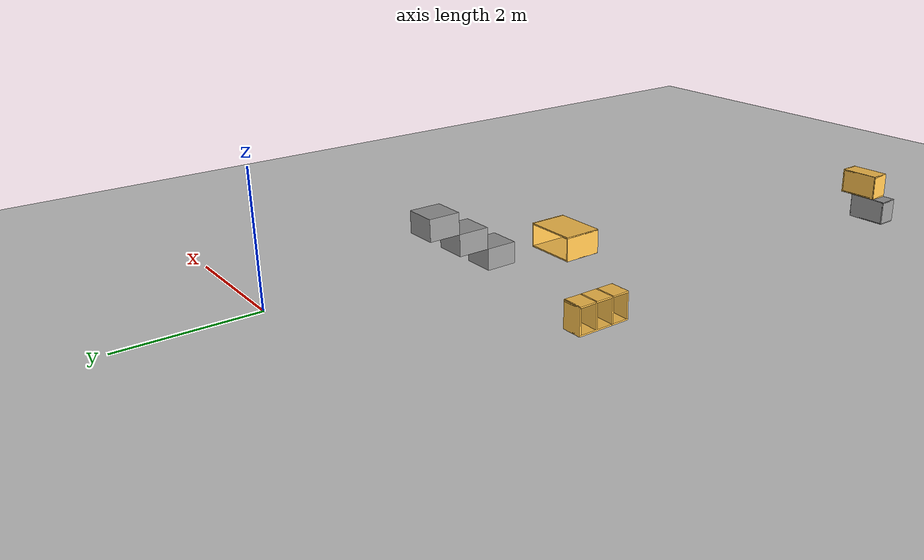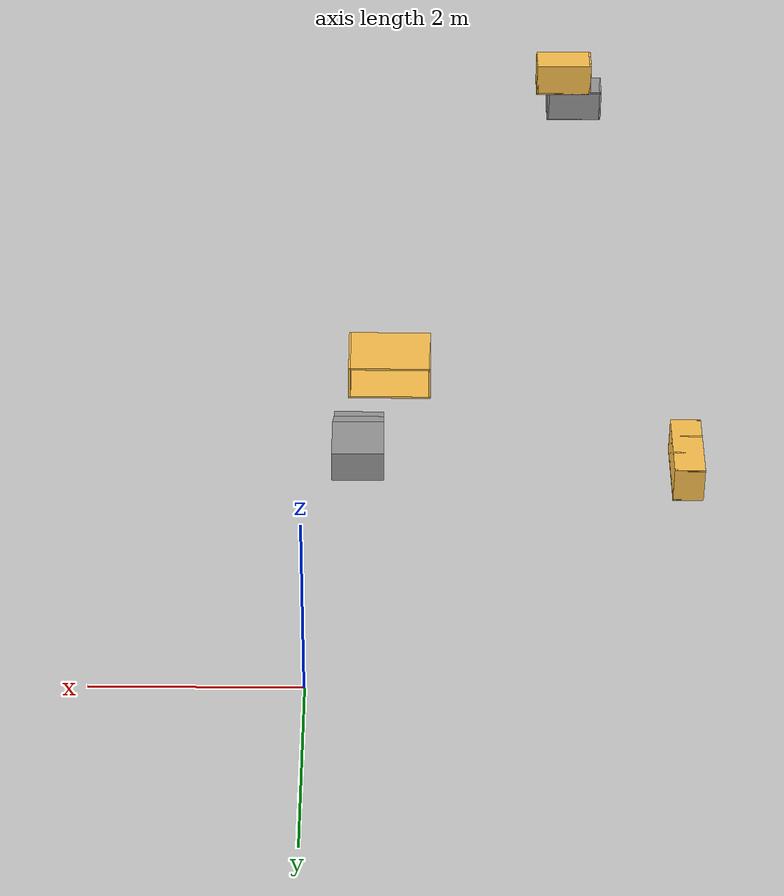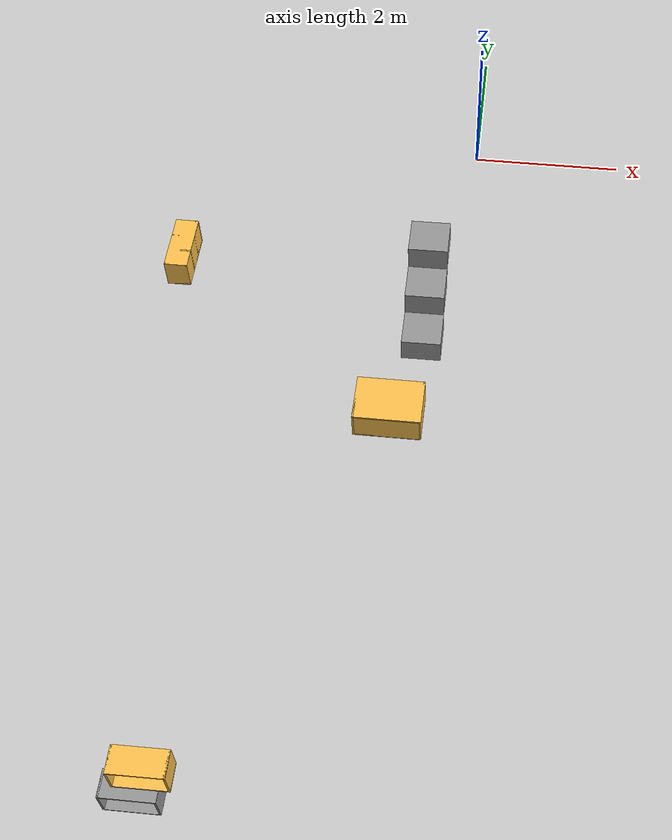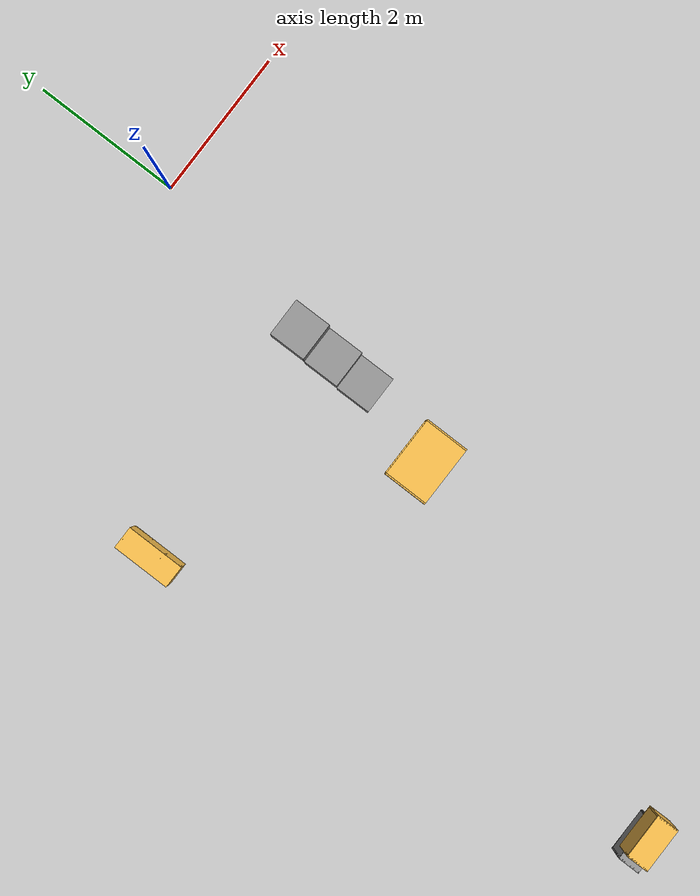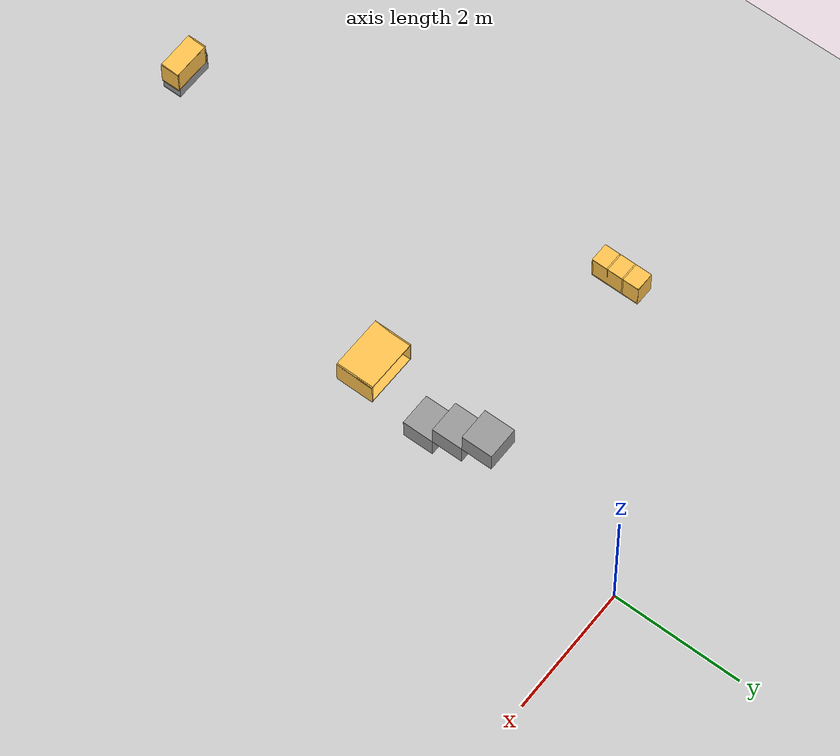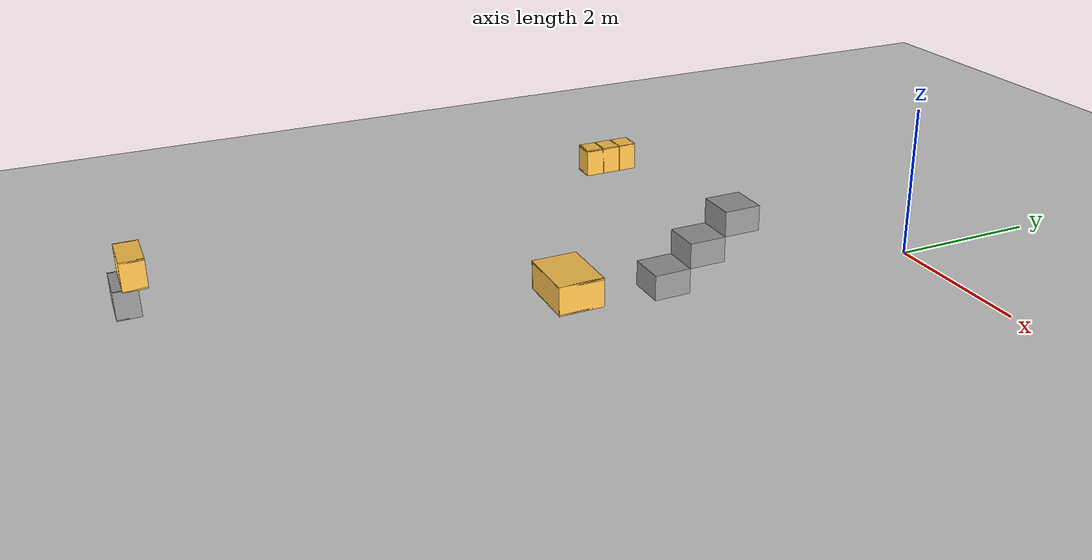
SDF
<sdf version="1.6">
 <world name="default">
  <model name="ground_plane">
   <static>1</static>
   <link name="link">
    <collision name="collision">
     <geometry><plane><normal>0 0 1</normal><size>100 100</size></plane></geometry>
     <surface><friction><ode><mu>100</mu><mu2>50</mu2></ode></friction></surface>
    </collision>
    <visual name="visual">
     <cast_shadows>0</cast_shadows>
     <geometry><plane><normal>0 0 1</normal><size>100 100</size></plane></geometry>
     <material>
      <script><uri>file://media/materials/scripts/gazebo.material</uri><name>Gazebo/Grey</name></script>
     </material>
    </visual>
   </link>
  </model>
  <model name="Wall_Cabinet_24x15W">
   <link name="Wall_41">
    <pose>0 0 0.01 0 -0 0</pose>
    <inertial>
     <mass>1.4983</mass>
     <inertia><ixx>0.011</ixx><iyy>0.0571</iyy><izz>0.0462</izz><ixy>0</ixy><ixz>0</ixz><iyz>0</iyz></inertia>
    </inertial>
    <collision name="Wall_41_Collision"><geometry><box><size>0.608 0.296 0.02</size></box></geometry></collision>
    <visual name="Wall_41_Visual">
     <geometry><box><size>0.608 0.296 0.02</size></box></geometry>
     <material>
      <script><uri>file://media/materials/scripts/gazebo.material</uri><name>Gazebo/Grey</name></script>
      <ambient>1 1 1 1</ambient>
     </material>
    </visual>
    <pose>0.000184 0.181953 0 0 -0 0</pose>
   </link>
   <joint name="41_43" type="fixed">
    <pose>-0.304 0 0 0 -0 0</pose>
    <parent>Wall_43</parent>
    <child>Wall_41</child>
    <axis>
     <xyz>0 0 1</xyz>
     <use_parent_model_frame>0</use_parent_model_frame>
     <limit><lower>-1e+16</lower><upper>1e+16</upper></limit>
    </axis>
   </joint>
   <joint name="41_45" type="fixed">
    <pose>0.304 0 0 0 -0 0</pose>
    <parent>Wall_45</parent>
    <child>Wall_41</child>
    <axis>
     <xyz>0 0 1</xyz>
     <use_parent_model_frame>0</use_parent_model_frame>
     <limit><lower>-1e+16</lower><upper>1e+16</upper></limit>
    </axis>
   </joint>
   <joint name="41_49" type="fixed">
    <pose>0 -0.148 0 0 -0 0</pose>
    <parent>Wall_49</parent>
    <child>Wall_41</child>
    <axis>
     <xyz>0 0 1</xyz>
     <use_parent_model_frame>0</use_parent_model_frame>
     <limit><lower>-1e+16</lower><upper>1e+16</upper></limit>
    </axis>
   </joint>
   <link name="Wall_43">
    <pose>-0.294 0 0.192 0 -0 0</pose>
    <inertial>
     <mass>0.9463</mass>
     <inertia><ixx>0.0069</ixx><iyy>0.0185</iyy><izz>0.0117</izz><ixy>0</ixy><ixz>0</ixz><iyz>0</iyz></inertia>
    </inertial>
    <collision name="Wall_43_Collision"><geometry><box><size>0.02 0.296 0.384</size></box></geometry></collision>
    <visual name="Wall_43_Visual">
     <geometry><box><size>0.02 0.296 0.384</size></box></geometry>
     <material>
      <script><uri>file://media/materials/scripts/gazebo.material</uri><name>Gazebo/Grey</name></script>
      <ambient>1 1 1 1</ambient>
     </material>
    </visual>
   </link>
   <link name="Wall_45">
    <pose>0.294 0 0.192 0 -0 0</pose>
    <inertial>
     <mass>0.9463</mass>
     <inertia><ixx>0.0069</ixx><iyy>0.0185</iyy><izz>0.0117</izz><ixy>0</ixy><ixz>0</ixz><iyz>0</iyz></inertia>
    </inertial>
    <collision name="Wall_45_Collision"><geometry><box><size>0.02 0.296 0.384</size></box></geometry></collision>
    <visual name="Wall_45_Visual">
     <geometry><box><size>0.02 0.296 0.384</size></box></geometry>
     <material>
      <script><uri>file://media/materials/scripts/gazebo.material</uri><name>Gazebo/Grey</name></script>
      <ambient>1 1 1 1</ambient>
     </material>
    </visual>
   </link>
   <link name="Wall_47">
    <pose>0 0 0.374 0 -0 0</pose>
    <inertial>
     <mass>1.4983</mass>
     <inertia><ixx>0.011</ixx><iyy>0.0571</iyy><izz>0.0462</izz><ixy>0</ixy><ixz>0</ixz><iyz>0</iyz></inertia>
    </inertial>
    <collision name="Wall_47_Collision"><geometry><box><size>0.608 0.296 0.02</size></box></geometry></collision>
    <visual name="Wall_47_Visual">
     <geometry><box><size>0.608 0.296 0.02</size></box></geometry>
     <material>
      <script><uri>file://media/materials/scripts/gazebo.material</uri><name>Gazebo/Grey</name></script>
      <ambient>1 1 1 1</ambient>
     </material>
    </visual>
   </link>
   <joint name="47_43" type="fixed">
    <pose>-0.304 0 0 0 -0 0</pose>
    <parent>Wall_43</parent>
    <child>Wall_47</child>
    <axis>
     <xyz>0 0 1</xyz>
     <use_parent_model_frame>0</use_parent_model_frame>
     <limit><lower>-1e+16</lower><upper>1e+16</upper></limit>
    </axis>
   </joint>
   <joint name="47_45" type="fixed">
    <pose>0.304 0 0 0 -0 0</pose>
    <parent>Wall_45</parent>
    <child>Wall_47</child>
    <axis>
     <xyz>0 0 1</xyz>
     <use_parent_model_frame>0</use_parent_model_frame>
     <limit><lower>-1e+16</lower><upper>1e+16</upper></limit>
    </axis>
   </joint>
   <joint name="47_49" type="fixed">
    <pose>0 -0.148 0 0 -0 0</pose>
    <parent>Wall_49</parent>
    <child>Wall_47</child>
    <axis>
     <xyz>0 0 1</xyz>
     <use_parent_model_frame>0</use_parent_model_frame>
     <limit><lower>-1e+16</lower><upper>1e+16</upper></limit>
    </axis>
   </joint>
   <link name="Wall_49">
    <pose>0 -0.138 0.19 0 -0 0</pose>
    <inertial>
     <mass>1.9108</mass>
     <inertia><ixx>0.0231</ixx><iyy>0.0582</iyy><izz>0.0811</izz><ixy>0</ixy><ixz>0</ixz><iyz>0</iyz></inertia>
    </inertial>
    <collision name="Wall_49_Collision"><geometry><box><size>0.604 0.02 0.38</size></box></geometry></collision>
    <visual name="Wall_49_Visual">
     <geometry><box><size>0.604 0.02 0.38</size></box></geometry>
     <material>
      <script><uri>file://media/materials/scripts/gazebo.material</uri><name>Gazebo/Grey</name></script>
      <ambient>1 1 1 1</ambient>
     </material>
    </visual>
   </link>
   <joint name="49_43" type="fixed">
    <pose>-0.302 0 0 0 -0 0</pose>
    <parent>Wall_41</parent>
    <child>Wall_49</child>
    <axis>
     <xyz>0 1 0</xyz>
     <use_parent_model_frame>0</use_parent_model_frame>
     <limit><lower>-1e+16</lower><upper>1e+16</upper></limit>
    </axis>
   </joint>
   <joint name="49_45" type="fixed">
    <pose>0.302 0 0 0 -0 0</pose>
    <parent>Wall_45</parent>
    <child>Wall_49</child>
    <axis>
     <xyz>0 1 0</xyz>
     <use_parent_model_frame>0</use_parent_model_frame>
     <limit><lower>-1e+16</lower><upper>1e+16</upper></limit>
    </axis>
   </joint>
   <static>1</static>
   <pose>-2.81871 -9.49077 -0.015499 0 0 -3.13778</pose>
  </model>
  <model name="Wall_Cabinet_24x15M">
   <link name="Wall_41">
    <pose>0 0 0.01 0 -0 0</pose>
    <inertial>
     <mass>1.4983</mass>
     <inertia><ixx>0.011</ixx><iyy>0.0571</iyy><izz>0.0462</izz><ixy>0</ixy><ixz>0</ixz><iyz>0</iyz></inertia>
    </inertial>
    <collision name="Wall_41_Collision"><geometry><box><size>0.608 0.296 0.02</size></box></geometry></collision>
    <visual name="Wall_41_Visual">
     <geometry><box><size>0.608 0.296 0.02</size></box></geometry>
     <material>
      <script><uri>file://media/materials/scripts/gazebo.material</uri><name>Gazebo/Grey</name></script>
      <ambient>1 0.764706 0.305882 1</ambient>
     </material>
    </visual>
    <pose>0.000184 0.181953 0 0 -0 0</pose>
   </link>
   <joint name="41_43" type="fixed">
    <pose>-0.304 0 0 0 -0 0</pose>
    <parent>Wall_43</parent>
    <child>Wall_41</child>
    <axis>
     <xyz>0 0 1</xyz>
     <use_parent_model_frame>0</use_parent_model_frame>
     <limit><lower>-1e+16</lower><upper>1e+16</upper></limit>
    </axis>
   </joint>
   <joint name="41_45" type="fixed">
    <pose>0.304 0 0 0 -0 0</pose>
    <parent>Wall_45</parent>
    <child>Wall_41</child>
    <axis>
     <xyz>0 0 1</xyz>
     <use_parent_model_frame>0</use_parent_model_frame>
     <limit><lower>-1e+16</lower><upper>1e+16</upper></limit>
    </axis>
   </joint>
   <joint name="41_49" type="fixed">
    <pose>0 -0.148 0 0 -0 0</pose>
    <parent>Wall_49</parent>
    <child>Wall_41</child>
    <axis>
     <xyz>0 0 1</xyz>
     <use_parent_model_frame>0</use_parent_model_frame>
     <limit><lower>-1e+16</lower><upper>1e+16</upper></limit>
    </axis>
   </joint>
   <link name="Wall_43">
    <pose>-0.294 0 0.192 0 -0 0</pose>
    <inertial>
     <mass>0.9463</mass>
     <inertia><ixx>0.0069</ixx><iyy>0.0185</iyy><izz>0.0117</izz><ixy>0</ixy><ixz>0</ixz><iyz>0</iyz></inertia>
    </inertial>
    <collision name="Wall_43_Collision"><geometry><box><size>0.02 0.296 0.384</size></box></geometry></collision>
    <visual name="Wall_43_Visual">
     <geometry><box><size>0.02 0.296 0.384</size></box></geometry>
     <material>
      <script><uri>file://media/materials/scripts/gazebo.material</uri><name>Gazebo/Grey</name></script>
      <ambient>1 0.764706 0.305882 1</ambient>
     </material>
    </visual>
   </link>
   <link name="Wall_45">
    <pose>0.294 0 0.192 0 -0 0</pose>
    <inertial>
     <mass>0.9463</mass>
     <inertia><ixx>0.0069</ixx><iyy>0.0185</iyy><izz>0.0117</izz><ixy>0</ixy><ixz>0</ixz><iyz>0</iyz></inertia>
    </inertial>
    <collision name="Wall_45_Collision"><geometry><box><size>0.02 0.296 0.384</size></box></geometry></collision>
    <visual name="Wall_45_Visual">
     <geometry><box><size>0.02 0.296 0.384</size></box></geometry>
     <material>
      <script><uri>file://media/materials/scripts/gazebo.material</uri><name>Gazebo/Grey</name></script>
      <ambient>1 0.764706 0.305882 1</ambient>
     </material>
    </visual>
   </link>
   <link name="Wall_47">
    <pose>0 0 0.374 0 -0 0</pose>
    <inertial>
     <mass>1.4983</mass>
     <inertia><ixx>0.011</ixx><iyy>0.0571</iyy><izz>0.0462</izz><ixy>0</ixy><ixz>0</ixz><iyz>0</iyz></inertia>
    </inertial>
    <collision name="Wall_47_Collision"><geometry><box><size>0.608 0.296 0.02</size></box></geometry></collision>
    <visual name="Wall_47_Visual">
     <geometry><box><size>0.608 0.296 0.02</size></box></geometry>
     <material>
      <script><uri>file://media/materials/scripts/gazebo.material</uri><name>Gazebo/Grey</name></script>
      <ambient>1 0.764706 0.305882 1</ambient>
     </material>
    </visual>
   </link>
   <joint name="47_43" type="fixed">
    <pose>-0.304 0 0 0 -0 0</pose>
    <parent>Wall_43</parent>
    <child>Wall_47</child>
    <axis>
     <xyz>0 0 1</xyz>
     <use_parent_model_frame>0</use_parent_model_frame>
     <limit><lower>-1e+16</lower><upper>1e+16</upper></limit>
    </axis>
   </joint>
   <joint name="47_45" type="fixed">
    <pose>0.304 0 0 0 -0 0</pose>
    <parent>Wall_45</parent>
    <child>Wall_47</child>
    <axis>
     <xyz>0 0 1</xyz>
     <use_parent_model_frame>0</use_parent_model_frame>
     <limit><lower>-1e+16</lower><upper>1e+16</upper></limit>
    </axis>
   </joint>
   <joint name="47_49" type="fixed">
    <pose>0 -0.148 0 0 -0 0</pose>
    <parent>Wall_49</parent>
    <child>Wall_47</child>
    <axis>
     <xyz>0 0 1</xyz>
     <use_parent_model_frame>0</use_parent_model_frame>
     <limit><lower>-1e+16</lower><upper>1e+16</upper></limit>
    </axis>
   </joint>
   <link name="Wall_49">
    <pose>0 -0.138 0.19 0 -0 0</pose>
    <inertial>
     <mass>1.9108</mass>
     <inertia><ixx>0.0231</ixx><iyy>0.0582</iyy><izz>0.0811</izz><ixy>0</ixy><ixz>0</ixz><iyz>0</iyz></inertia>
    </inertial>
    <collision name="Wall_49_Collision"><geometry><box><size>0.604 0.02 0.38</size></box></geometry></collision>
    <visual name="Wall_49_Visual">
     <geometry><box><size>0.604 0.02 0.38</size></box></geometry>
     <material>
      <script><uri>file://media/materials/scripts/gazebo.material</uri><name>Gazebo/Grey</name></script>
      <ambient>1 0.764706 0.305882 1</ambient>
     </material>
    </visual>
   </link>
   <joint name="49_43" type="fixed">
    <pose>-0.302 0 0 0 -0 0</pose>
    <parent>Wall_41</parent>
    <child>Wall_49</child>
    <axis>
     <xyz>0 1 0</xyz>
     <use_parent_model_frame>0</use_parent_model_frame>
     <limit><lower>-1e+16</lower><upper>1e+16</upper></limit>
    </axis>
   </joint>
   <joint name="49_45" type="fixed">
    <pose>0.302 0 0 0 -0 0</pose>
    <parent>Wall_45</parent>
    <child>Wall_49</child>
    <axis>
     <xyz>0 1 0</xyz>
     <use_parent_model_frame>0</use_parent_model_frame>
     <limit><lower>-1e+16</lower><upper>1e+16</upper></limit>
    </axis>
   </joint>
   <static>1</static>
   <pose>-2.68553 -9.38223 0.407254 0.002206 -0 -3.13266</pose>
  </model>
  <model name="Fridge_Cabinet_33x15">
   <link name="Wall_17">
    <pose>0 0 0.01 0 -0 0</pose>
    <inertial>
     <mass>4.8627</mass>
     <inertia><ixx>0.146</ixx><iyy>0.4318</iyy><izz>0.2861</izz><ixy>0</ixy><ixz>0</ixz><iyz>0</iyz></inertia>
    </inertial>
    <collision name="Wall_17_Collision"><geometry><box><size>0.84 0.6 0.02</size></box></geometry></collision>
    <visual name="Wall_17_Visual">
     <geometry><box><size>0.84 0.6 0.02</size></box></geometry>
     <material>
      <script><uri>file://media/materials/scripts/gazebo.material</uri><name>Gazebo/Grey</name></script>
      <ambient>1 0.764706 0.305882 1</ambient>
     </material>
    </visual>
   </link>
   <joint name="17_21" type="fixed">
    <pose>0.42 0 0 0 -0 0</pose>
    <parent>Wall_21</parent>
    <child>Wall_17</child>
    <axis>
     <xyz>1 0 0</xyz>
     <use_parent_model_frame>0</use_parent_model_frame>
     <limit><lower>-1e+16</lower><upper>1e+16</upper></limit>
    </axis>
   </joint>
   <joint name="17_19" type="fixed">
    <pose>-0.42 0 0 0 -0 0</pose>
    <parent>Wall_19</parent>
    <child>Wall_17</child>
    <axis>
     <xyz>1 0 0</xyz>
     <use_parent_model_frame>0</use_parent_model_frame>
     <limit><lower>-1e+16</lower><upper>1e+16</upper></limit>
    </axis>
   </joint>
   <joint name="17_25" type="fixed">
    <pose>0 -0.3 0 0 -0 0</pose>
    <parent>Wall_25</parent>
    <child>Wall_17</child>
    <axis>
     <xyz>0 1 0</xyz>
     <use_parent_model_frame>0</use_parent_model_frame>
     <limit><lower>-1e+16</lower><upper>1e+16</upper></limit>
    </axis>
   </joint>
   <link name="Wall_19">
    <pose>-0.41 0 0.192 0 -0 0</pose>
    <inertial>
     <mass>2.223</mass>
     <inertia><ixx>0.0668</ixx><iyy>0.094</iyy><izz>0.0274</izz><ixy>0</ixy><ixz>0</ixz><iyz>0</iyz></inertia>
    </inertial>
    <collision name="Wall_19_Collision"><geometry><box><size>0.02 0.6 0.384</size></box></geometry></collision>
    <visual name="Wall_19_Visual">
     <geometry><box><size>0.02 0.6 0.384</size></box></geometry>
     <material>
      <script><uri>file://media/materials/scripts/gazebo.material</uri><name>Gazebo/Grey</name></script>
      <ambient>1 0.764706 0.305882 1</ambient>
     </material>
    </visual>
   </link>
   <link name="Wall_21">
    <pose>0.41 0 0.192 0 -0 0</pose>
    <inertial>
     <mass>2.223</mass>
     <inertia><ixx>0.0668</ixx><iyy>0.094</iyy><izz>0.0274</izz><ixy>0</ixy><ixz>0</ixz><iyz>0</iyz></inertia>
    </inertial>
    <collision name="Wall_21_Collision"><geometry><box><size>0.02 0.6 0.384</size></box></geometry></collision>
    <visual name="Wall_21_Visual">
     <geometry><box><size>0.02 0.6 0.384</size></box></geometry>
     <material>
      <script><uri>file://media/materials/scripts/gazebo.material</uri><name>Gazebo/Grey</name></script>
      <ambient>1 0.764706 0.305882 1</ambient>
     </material>
    </visual>
   </link>
   <link name="Wall_23">
    <pose>0 0 0.374 0 -0 0</pose>
    <inertial>
     <mass>4.8627</mass>
     <inertia><ixx>0.146</ixx><iyy>0.4318</iyy><izz>0.2861</izz><ixy>0</ixy><ixz>0</ixz><iyz>0</iyz></inertia>
    </inertial>
    <collision name="Wall_23_Collision"><geometry><box><size>0.84 0.6 0.02</size></box></geometry></collision>
    <visual name="Wall_23_Visual">
     <geometry><box><size>0.84 0.6 0.02</size></box></geometry>
     <material>
      <script><uri>file://media/materials/scripts/gazebo.material</uri><name>Gazebo/Grey</name></script>
      <ambient>1 0.764706 0.305882 1</ambient>
     </material>
    </visual>
   </link>
   <joint name="23_21" type="fixed">
    <pose>0.42 0 0 0 -0 0</pose>
    <parent>Wall_21</parent>
    <child>Wall_23</child>
    <axis>
     <xyz>0 0 1</xyz>
     <use_parent_model_frame>0</use_parent_model_frame>
     <limit><lower>-1e+16</lower><upper>1e+16</upper></limit>
    </axis>
   </joint>
   <joint name="23_19" type="fixed">
    <pose>-0.42 0 0 0 -0 0</pose>
    <parent>Wall_19</parent>
    <child>Wall_23</child>
    <axis>
     <xyz>0 0 1</xyz>
     <use_parent_model_frame>0</use_parent_model_frame>
     <limit><lower>-1e+16</lower><upper>1e+16</upper></limit>
    </axis>
   </joint>
   <joint name="23_25" type="fixed">
    <pose>0 -0.3 0 0 -0 0</pose>
    <parent>Wall_25</parent>
    <child>Wall_23</child>
    <axis>
     <xyz>0 0 1</xyz>
     <use_parent_model_frame>0</use_parent_model_frame>
     <limit><lower>-1e+16</lower><upper>1e+16</upper></limit>
    </axis>
   </joint>
   <link name="Wall_25">
    <pose>0 -0.29 0.19 0 -0 0</pose>
    <inertial>
     <mass>3.0651</mass>
     <inertia><ixx>0.037</ixx><iyy>0.1786</iyy><izz>0.2154</izz><ixy>0</ixy><ixz>0</ixz><iyz>0</iyz></inertia>
    </inertial>
    <collision name="Wall_25_Collision"><geometry><box><size>0.836 0.02 0.38</size></box></geometry></collision>
    <visual name="Wall_25_Visual">
     <geometry><box><size>0.836 0.02 0.38</size></box></geometry>
     <material>
      <script><uri>file://media/materials/scripts/gazebo.material</uri><name>Gazebo/Grey</name></script>
      <ambient>1 0.764706 0.305882 1</ambient>
     </material>
    </visual>
   </link>
   <joint name="25_21" type="fixed">
    <pose>0.42 0 0 0 -0 0</pose>
    <parent>Wall_21</parent>
    <child>Wall_25</child>
    <axis>
     <xyz>0 1 0</xyz>
     <use_parent_model_frame>0</use_parent_model_frame>
     <limit><lower>-1e+16</lower><upper>1e+16</upper></limit>
    </axis>
   </joint>
   <joint name="25_19" type="fixed">
    <pose>-0.42 0 0 0 -0 0</pose>
    <parent>Wall_19</parent>
    <child>Wall_25</child>
    <axis>
     <xyz>0 1 0</xyz>
     <use_parent_model_frame>0</use_parent_model_frame>
     <limit><lower>-1e+16</lower><upper>1e+16</upper></limit>
    </axis>
   </joint>
   <static>1</static>
   <pose>-0.755421 -4.5616 0 0 -0 0</pose>
  </model>
  <model name="Wall_Cabinet_15x30_0">
   <pose>-3.66148 -2.63463 0.376115 0 -0 0</pose>
   <link name="Wall_0">
    <pose>0 0.374 0.192 0 -0 0</pose>
    <inertial>
     <mass>0.9882</mass>
     <inertia><ixx>0.0072</ixx><iyy>0.0194</iyy><izz>0.0122</izz><ixy>0</ixy><ixz>0</ixz><iyz>0</iyz></inertia>
    </inertial>
    <collision name="Wall_0_Collision"><geometry><box><size>0.296 0.02 0.384</size></box></geometry></collision>
    <visual name="Wall_0_Visual">
     <geometry><box><size>0.296 0.02 0.384</size></box></geometry>
     <material>
      <script><uri>file://media/materials/scripts/gazebo.material</uri><name>Gazebo/Grey</name></script>
      <ambient>1 0.764706 0.305882 1</ambient>
     </material>
    </visual>
   </link>
   <joint name="0_2" type="fixed">
    <pose>0 0 0.192 0 -0 0</pose>
    <parent>Wall_2</parent>
    <child>Wall_0</child>
    <axis>
     <xyz>0 0 1</xyz>
     <use_parent_model_frame>0</use_parent_model_frame>
     <limit><lower>-1e+16</lower><upper>1e+16</upper></limit>
    </axis>
   </joint>
   <joint name="0_4" type="fixed">
    <pose>0 0 -0.192 0 -0 0</pose>
    <parent>Wall_4</parent>
    <child>Wall_0</child>
    <axis>
     <xyz>0 0 1</xyz>
     <use_parent_model_frame>0</use_parent_model_frame>
     <limit><lower>-1e+16</lower><upper>1e+16</upper></limit>
    </axis>
   </joint>
   <joint name="0_15" type="fixed">
    <pose>0.148 0 0 0 -0 0</pose>
    <parent>Wall_15</parent>
    <child>Wall_0</child>
    <axis>
     <xyz>1 0 0</xyz>
     <use_parent_model_frame>0</use_parent_model_frame>
     <limit><lower>-1e+16</lower><upper>1e+16</upper></limit>
    </axis>
   </joint>
   <link name="Wall_11">
    <pose>0 -0.132768 0.192 0 -0 0</pose>
    <inertial>
     <mass>0.9882</mass>
     <inertia><ixx>0.0072</ixx><iyy>0.0194</iyy><izz>0.0122</izz><ixy>0</ixy><ixz>0</ixz><iyz>0</iyz></inertia>
    </inertial>
    <collision name="Wall_11_Collision"><geometry><box><size>0.296 0.02 0.384</size></box></geometry></collision>
    <visual name="Wall_11_Visual">
     <geometry><box><size>0.296 0.02 0.384</size></box></geometry>
     <material>
      <script><uri>file://media/materials/scripts/gazebo.material</uri><name>Gazebo/Grey</name></script>
      <ambient>1 0.764706 0.305882 1</ambient>
     </material>
    </visual>
   </link>
   <joint name="11_2" type="fixed">
    <pose>0 0 0.192 0 -0 0</pose>
    <parent>Wall_2</parent>
    <child>Wall_11</child>
    <axis>
     <xyz>0 0 1</xyz>
     <use_parent_model_frame>0</use_parent_model_frame>
     <limit><lower>-1e+16</lower><upper>1e+16</upper></limit>
    </axis>
   </joint>
   <joint name="11_4" type="fixed">
    <pose>0 0 -0.192 0 -0 0</pose>
    <parent>Wall_4</parent>
    <child>Wall_11</child>
    <axis>
     <xyz>0 0 1</xyz>
     <use_parent_model_frame>0</use_parent_model_frame>
     <limit><lower>-1e+16</lower><upper>1e+16</upper></limit>
    </axis>
   </joint>
   <joint name="11_15" type="fixed">
    <pose>0.148 0 0 0 -0 0</pose>
    <parent>Wall_15</parent>
    <child>Wall_11</child>
    <axis>
     <xyz>1 0 0</xyz>
     <use_parent_model_frame>0</use_parent_model_frame>
     <limit><lower>-1e+16</lower><upper>1e+16</upper></limit>
    </axis>
   </joint>
   <link name="Wall_15">
    <pose>0.138 0 0.19 0 -0 0</pose>
    <inertial>
     <mass>2.5241</mass>
     <inertia><ixx>0.0305</ixx><iyy>0.1229</iyy><izz>0.1532</izz><ixy>0</ixy><ixz>0</ixz><iyz>0</iyz></inertia>
    </inertial>
    <collision name="Wall_15_Collision"><geometry><box><size>0.02 0.764 0.38</size></box></geometry></collision>
    <visual name="Wall_15_Visual">
     <geometry><box><size>0.02 0.764 0.38</size></box></geometry>
     <material>
      <script><uri>file://media/materials/scripts/gazebo.material</uri><name>Gazebo/Grey</name></script>
      <ambient>1 0.764706 0.305882 1</ambient>
     </material>
    </visual>
   </link>
   <joint name="15_2" type="fixed">
    <pose>0 0 0.19 0 -0 0</pose>
    <parent>Wall_2</parent>
    <child>Wall_15</child>
    <axis>
     <xyz>0 0 1</xyz>
     <use_parent_model_frame>0</use_parent_model_frame>
     <limit><lower>-1e+16</lower><upper>1e+16</upper></limit>
    </axis>
   </joint>
   <joint name="15_4" type="fixed">
    <pose>0 0 -0.19 0 -0 0</pose>
    <parent>Wall_4</parent>
    <child>Wall_15</child>
    <axis>
     <xyz>0 0 1</xyz>
     <use_parent_model_frame>0</use_parent_model_frame>
     <limit><lower>-1e+16</lower><upper>1e+16</upper></limit>
    </axis>
   </joint>
   <link name="Wall_2">
    <pose>0 0 0.374 0 -0 0</pose>
    <inertial>
     <mass>1.9765</mass>
     <inertia><ixx>0.0145</ixx><iyy>0.1116</iyy><izz>0.0972</izz><ixy>0</ixy><ixz>0</ixz><iyz>0</iyz></inertia>
    </inertial>
    <collision name="Wall_2_Collision"><geometry><box><size>0.296 0.768 0.02</size></box></geometry></collision>
    <visual name="Wall_2_Visual">
     <geometry><box><size>0.296 0.768 0.02</size></box></geometry>
     <material>
      <script><uri>file://media/materials/scripts/gazebo.material</uri><name>Gazebo/Grey</name></script>
      <ambient>1 0.764706 0.305882 1</ambient>
     </material>
    </visual>
   </link>
   <link name="Wall_4">
    <pose>0 0 0.01 0 -0 0</pose>
    <inertial>
     <mass>1.9765</mass>
     <inertia><ixx>0.0145</ixx><iyy>0.1116</iyy><izz>0.0972</izz><ixy>0</ixy><ixz>0</ixz><iyz>0</iyz></inertia>
    </inertial>
    <collision name="Wall_4_Collision"><geometry><box><size>0.296 0.768 0.02</size></box></geometry></collision>
    <visual name="Wall_4_Visual">
     <geometry><box><size>0.296 0.768 0.02</size></box></geometry>
     <material>
      <script><uri>file://media/materials/scripts/gazebo.material</uri><name>Gazebo/Grey</name></script>
      <ambient>1 0.764706 0.305882 1</ambient>
     </material>
    </visual>
    <pose>-0.181124 0 0 0 0 -1.5708</pose>
   </link>
   <link name="Wall_6">
    <pose>0 -0.374 0.192 0 -0 0</pose>
    <inertial>
     <mass>0.9882</mass>
     <inertia><ixx>0.0072</ixx><iyy>0.0194</iyy><izz>0.0122</izz><ixy>0</ixy><ixz>0</ixz><iyz>0</iyz></inertia>
    </inertial>
    <collision name="Wall_6_Collision"><geometry><box><size>0.296 0.02 0.384</size></box></geometry></collision>
    <visual name="Wall_6_Visual">
     <geometry><box><size>0.296 0.02 0.384</size></box></geometry>
     <material>
      <script><uri>file://media/materials/scripts/gazebo.material</uri><name>Gazebo/Grey</name></script>
      <ambient>1 0.764706 0.305882 1</ambient>
     </material>
    </visual>
   </link>
   <joint name="6_2" type="fixed">
    <pose>0 0 0.192 0 -0 0</pose>
    <parent>Wall_2</parent>
    <child>Wall_6</child>
    <axis>
     <xyz>0 0 1</xyz>
     <use_parent_model_frame>0</use_parent_model_frame>
     <limit><lower>-1e+16</lower><upper>1e+16</upper></limit>
    </axis>
   </joint>
   <joint name="6_4" type="fixed">
    <pose>0 0 -0.192 0 -0 0</pose>
    <parent>Wall_4</parent>
    <child>Wall_6</child>
    <axis>
     <xyz>0 0 1</xyz>
     <use_parent_model_frame>0</use_parent_model_frame>
     <limit><lower>-1e+16</lower><upper>1e+16</upper></limit>
    </axis>
   </joint>
   <joint name="6_15" type="fixed">
    <pose>0.148 0 0 0 -0 0</pose>
    <parent>Wall_15</parent>
    <child>Wall_6</child>
    <axis>
     <xyz>1 0 0</xyz>
     <use_parent_model_frame>0</use_parent_model_frame>
     <limit><lower>-1e+16</lower><upper>1e+16</upper></limit>
    </axis>
   </joint>
   <link name="Wall_8">
    <pose>0 0.120833 0.192 0 -0 0</pose>
    <inertial>
     <mass>0.9882</mass>
     <inertia><ixx>0.0072</ixx><iyy>0.0194</iyy><izz>0.0122</izz><ixy>0</ixy><ixz>0</ixz><iyz>0</iyz></inertia>
    </inertial>
    <collision name="Wall_8_Collision"><geometry><box><size>0.296 0.02 0.384</size></box></geometry></collision>
    <visual name="Wall_8_Visual">
     <geometry><box><size>0.296 0.02 0.384</size></box></geometry>
     <material>
      <script><uri>file://media/materials/scripts/gazebo.material</uri><name>Gazebo/Grey</name></script>
      <ambient>1 0.764706 0.305882 1</ambient>
     </material>
    </visual>
   </link>
   <joint name="8_2" type="fixed">
    <pose>0 0 0.192 0 -0 0</pose>
    <parent>Wall_2</parent>
    <child>Wall_8</child>
    <axis>
     <xyz>0 0 1</xyz>
     <use_parent_model_frame>0</use_parent_model_frame>
     <limit><lower>-1e+16</lower><upper>1e+16</upper></limit>
    </axis>
   </joint>
   <joint name="8_4" type="fixed">
    <pose>0 0 -0.192 0 -0 0</pose>
    <parent>Wall_4</parent>
    <child>Wall_8</child>
    <axis>
     <xyz>0 0 1</xyz>
     <use_parent_model_frame>0</use_parent_model_frame>
     <limit><lower>-1e+16</lower><upper>1e+16</upper></limit>
    </axis>
   </joint>
   <joint name="8_15" type="fixed">
    <pose>0.148 0 0 0 -0 0</pose>
    <parent>Wall_15</parent>
    <child>Wall_8</child>
    <axis>
     <xyz>1 0 0</xyz>
     <use_parent_model_frame>0</use_parent_model_frame>
     <limit><lower>-1e+16</lower><upper>1e+16</upper></limit>
    </axis>
   </joint>
   <static>1</static>
  </model>
  <model name="stairs3">
   <pose>-0.459706 -2.91126 0 0 0 -3.13506</pose>
   <link name="Stairs_8">
    <visual name="Stairs_8_Visual_0">
     <pose>0 0.483333 0.166667 0 -0 0</pose>
     <geometry><box><size>0.5 0.483333 0.333333</size></box></geometry>
     <material>
      <script><uri>file://media/materials/scripts/gazebo.material</uri><name>Gazebo/Grey</name></script>
      <ambient>0 0 0 1</ambient>
     </material>
    </visual>
    <collision name="Stairs_8_Collision_0">
     <geometry><box><size>0.5 0.483333 0.333333</size></box></geometry>
     <pose>0 0.483333 0.166667 0 -0 0</pose>
    </collision>
    <visual name="Stairs_8_Visual_1">
     <pose>0 0 0.5 0 -0 0</pose>
     <geometry><box><size>0.5 0.483333 0.333333</size></box></geometry>
     <material>
      <script><uri>file://media/materials/scripts/gazebo.material</uri><name>Gazebo/Grey</name></script>
      <ambient>0 0 0 1</ambient>
     </material>
    </visual>
    <collision name="Stairs_8_Collision_1">
     <geometry><box><size>0.5 0.483333 0.333333</size></box></geometry>
     <pose>0 0 0.5 0 -0 0</pose>
    </collision>
    <visual name="Stairs_8_Visual_2">
     <pose>0 -0.483333 0.833333 0 -0 0</pose>
     <geometry><box><size>0.5 0.483333 0.333333</size></box></geometry>
     <material>
      <script><uri>file://media/materials/scripts/gazebo.material</uri><name>Gazebo/Grey</name></script>
      <ambient>0 0 0 1</ambient>
     </material>
    </visual>
    <collision name="Stairs_8_Collision_2">
     <geometry><box><size>0.5 0.483333 0.333333</size></box></geometry>
     <pose>0 -0.483333 0.833333 0 -0 0</pose>
    </collision>
   </link>
   <static>1</static>
  </model>
 </world>
</sdf>
